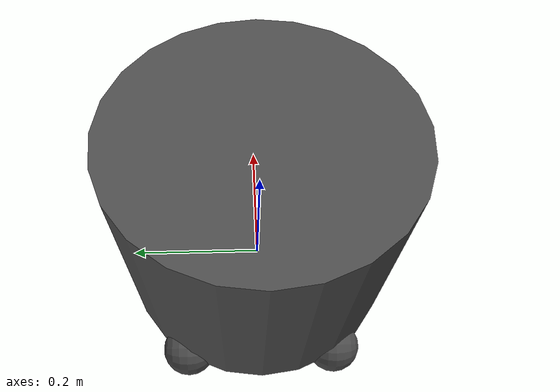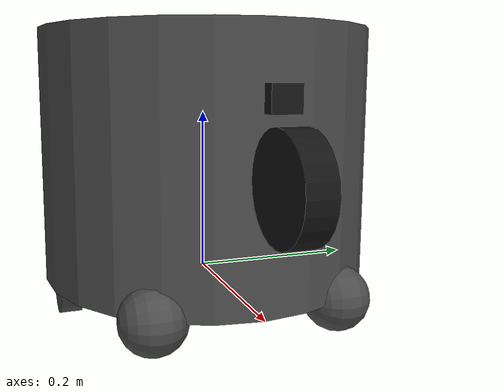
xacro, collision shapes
<?xml version="1.0" ?>
<robot name="uni_base" xmlns:xacro="http://ros.org/wiki/xacro">
  <xacro:include filename="$(find uni_description)/urdf/uni_base.gazebo.xacro"/>

  <!--link name="base_footprint"/-->

  <link name="base_link">
    <visual>
      <origin xyz="0 0 -0.04" rpy="0 0 -1.57"/>
      <geometry>
        <mesh filename="package://uni_description/meshes/B1_base_mesh.stl" scale="0.001 0.001 0.001"/>
      </geometry>
      <material
        name="">
        <color
          rgba="0.3 0.3 0.3 1" />
      </material>
    </visual>
    <collision>
      <origin xyz="0 0 0.15" rpy="0 0 0"/>
      <geometry>
        <cylinder length="0.3" radius="0.2"/>
      </geometry>
    </collision>

    <inertial>
      <origin xyz="0 0 0.14" rpy="0 0 0"/>
      <mass value="36.22"/>
      <inertia ixx="1.760901" ixy="2.081e-3" ixz="1.6376223e-01"
               iyy="2.069692" iyz="3.146e-05"
               izz="1.08381489" />
    </inertial>
  </link>

  <joint name="wheel_left_joint" type="fixed">
    <parent link="base_link"/>
    <child link="wheel_left_link"/>
    <origin xyz="0.0 0.175 0.025" rpy="-1.57 0 0"/>
    <axis xyz="0 0 1"/>
  </joint>

  <link name="wheel_left_link">
    <visual>
      <origin xyz="0 0 -0.025" rpy="0 1.57 0"/>
      <geometry>
        <mesh filename="package://uni_description/meshes/wheel_L.stl"/>
      </geometry>
      <material
        name="">
        <color
          rgba="0.3 0.3 0.3 1" />
      </material>
    </visual>

    <collision>
      <origin xyz="0 0 0" rpy="0 0 0"/>
      <geometry>
        <cylinder length="0.025" radius="0.065"/>
      </geometry>
    </collision>

    <inertial>
      <origin xyz="0 0 0" />
      <mass value="1.8985" />
      <inertia ixx="2.998261e-03" ixy="2.07094e-19" ixz="1.86545e-19"
               iyy="2.998261e-03" iyz="-9.08019e-20"
               izz="5.556445e-03" />
    </inertial>
  </link>

  <link name="wheel_right_link">
    <visual>
      <origin xyz="0 0 0.025" rpy="0 1.57 0"/>
      <geometry>
        <mesh filename="package://uni_description/meshes/wheel_R.stl"/>
      </geometry>
      <material
        name="">
        <color
          rgba="0.3 0.3 0.3 1" />
      </material>
    </visual>

    <collision>
      <origin xyz="0 0 0" rpy="0 0 0"/>
      <geometry>
        <cylinder length="0.025" radius="0.065"/>
      </geometry>
    </collision>

    <inertial>
      <origin xyz="0 0 0" />
      <mass value="1.8985" />
      <inertia ixx="2.998261e-03" ixy="2.07094e-19" ixz="1.86545e-19"
               iyy="2.998261e-03" iyz="-9.08019e-20"
               izz="5.556445e-03" />
    </inertial>
  </link>

  <joint name="wheel_right_joint" type="fixed">
    <parent link="base_link"/>
    <child link="wheel_right_link"/>
    <origin xyz="0.0 -0.175 0.025" rpy="-1.57 0 0"/>
    <axis xyz="0 0 1"/>
  </joint>

  <link name="caster_front_right_link">
    <collision>
      <origin xyz="0 0.001 0" rpy="0 0 0"/>
      <geometry>
        <sphere radius="0.0375"/>
      </geometry>
    </collision>

    <visual>
      <origin xyz="0 0.001 0" rpy="0 0 0"/>
      <geometry>
        <sphere radius="0.0375"/>
      </geometry>
      <material
        name="">
        <color
          rgba="0.3 0.3 0.3 1" />
      </material>
    </visual>

    <inertial>
      <origin xyz="0 0 0" />
      <mass value="0.005" />
      <inertia ixx="0.001" ixy="0.0" ixz="0.0"
               iyy="0.001" iyz="0.0"
               izz="0.001" />
    </inertial>
  </link>

  <joint name="caster_front_right_joint" type="fixed">
    <parent link="base_link"/>
    <child link="caster_front_right_link"/>
    <origin xyz="0.158 -0.105 -0.0005" rpy="-1.57 0 0"/>
  </joint>

  <link name="caster_front_left_link">
    <collision>
      <origin xyz="0 0.001 0" rpy="0 0 0"/>
      <geometry>
        <sphere radius="0.0375"/>
      </geometry>
    </collision>

    <visual>
      <origin xyz="0 0.001 0" rpy="0 0 0"/>
      <geometry>
        <sphere radius="0.0375"/>
      </geometry>
      <material
        name="">
        <color
          rgba="0.3 0.3 0.3 1" />
      </material>
    </visual>

    <inertial>
      <origin xyz="0 0 0" />
      <mass value="0.005" />
      <inertia ixx="0.001" ixy="0.0" ixz="0.0"
               iyy="0.001" iyz="0.0"
               izz="0.001" />
    </inertial>
  </link>

  <joint name="caster_front_left_joint" type="fixed">
    <parent link="base_link"/>
    <child link="caster_front_left_link"/>
    <origin xyz="0.158 0.105 -0.0005" rpy="-1.57 0 0"/>
  </joint>

  <link name="caster_back_right_link">
    <collision>
      <origin xyz="0 0.001 0" rpy="0 0 0"/>
      <geometry>
        <sphere radius="0.0375"/>
      </geometry>
    </collision>

    <visual>
      <origin xyz="0 0.001 0" rpy="0 0 0"/>
      <geometry>
        <sphere radius="0.0375"/>
      </geometry>
      <material
        name="">
        <color
          rgba="0.3 0.3 0.3 1" />
      </material>
    </visual>

    <inertial>
      <origin xyz="0 0 0" />
      <mass value="0.005" />
      <inertia ixx="0.001" ixy="0.0" ixz="0.0"
               iyy="0.001" iyz="0.0"
               izz="0.001" />
    </inertial>
  </link>

  <joint name="caster_back_right_joint" type="fixed">
    <parent link="base_link"/>
    <child link="caster_back_right_link"/>
    <origin xyz="-0.158 -0.105 -0.0005" rpy="-1.57 0 0"/>
  </joint>

  <link name="caster_back_left_link">
    <collision>
      <origin xyz="0 0.001 0" rpy="0 0 0"/>
      <geometry>
        <sphere radius="0.0375"/>
      </geometry>
    </collision>

    <visual>
      <origin xyz="0 0.001 0" rpy="0 0 0"/>
      <geometry>
        <sphere radius="0.0375"/>
      </geometry>
      <material
        name="">
        <color
          rgba="0.3 0.3 0.3 1" />
      </material>
    </visual>

    <inertial>
      <origin xyz="0 0 0" />
      <mass value="0.005" />
      <inertia ixx="0.001" ixy="0.0" ixz="0.0"
               iyy="0.001" iyz="0.0"
               izz="0.001" />
    </inertial>
  </link>

  <joint name="caster_back_left_joint" type="fixed">
    <parent link="base_link"/>
    <child link="caster_back_left_link"/>
    <origin xyz="-0.158 0.105 -0.0005" rpy="-1.57 0 0"/>
  </joint>

  <link name="imu_link"/>
  <joint name="imu_joint" type="fixed">
    <parent link="base_link"/>
    <child link="imu_link"/>
    <origin xyz="0.0 0 0.068" rpy="0 0 0"/>
  </joint>

  <link name="front_laser">
    <visual>
      <origin xyz="0.01 0 -0.04" rpy="0 -1.57 -1.57"/>
      <geometry>
        <mesh filename="package://uni_description/meshes/TiM571.stl" scale="0.001 0.001 0.001"/>
      </geometry>
      <material
        name="">
        <color
          rgba="0.08 0.08 0.08 1" />
      </material>
    </visual>

    <collision>
      <origin xyz="0.015 0 -0.0065" rpy="0 -1.57 -1.57"/>
      <geometry>
        <cylinder length="0.0315" radius="0.055"/>
      </geometry>
    </collision>

    <inertial>
      <mass value="0.001" />
      <origin xyz="0 0 0" />
      <inertia ixx="0.001" ixy="0.0" ixz="0.0"
               iyy="0.001" iyz="0.0"
               izz="0.001" />
    </inertial>
  </link>

  <joint name="scan_joint" type="fixed">
    <origin xyz="0.238 0 0.152" rpy="0 0 0"/>
    <parent link="base_link"/>
    <child link="front_laser"/>
  </joint>

  <link name="front_astra_camera">
    <visual>
      <origin xyz="-0.004 0.071 -0.129" rpy="0 0 1.57"/>
      <geometry>
        <mesh filename="package://uni_description/meshes/gazebo_astra.stl" scale="0.001 0.001 0.001" />
      </geometry>
      <material
        name="dark_grey">
        <color
          rgba="0.09 0.09 0.09 1" />
      </material>
    </visual>

    <collision>
      <origin xyz="0.005 0.011 0.013" rpy="0 0 0"/>
      <geometry>
        <box size="0.015 0.030 0.027"/>
      </geometry>
    </collision>
  </link>

  <joint name="front_astra_joint" type="fixed">
    <origin xyz="0.246 -0.02 0.212" rpy="0 0 0"/>
    <parent link="base_link"/>
    <child link="front_astra_camera"/>
  </joint>

  <joint name="front_astra_rgb_joint" type="fixed">
    <origin xyz="0.003 0.011 0.009" rpy="0 0 0"/>
    <parent link="front_astra_camera"/>
    <child link="front_astra_rgb_frame"/>
  </joint>

  <link name="front_astra_rgb_frame"/>

  <joint name="front_astra_rgb_optical_joint" type="fixed">
    <origin xyz="0 0 0" rpy="-1.57 0 -1.57"/>
    <parent link="front_astra_rgb_frame"/>
    <child link="front_astra_rgb_optical_frame"/>
  </joint>

  <link name="front_astra_rgb_optical_frame"/>

  <joint name="front_astra_depth_joint" type="fixed">
    <origin xyz="0 0.025 0" rpy="0 0 0"/>
    <parent link="front_astra_camera"/>
    <child link="front_astra_depth_frame"/>
  </joint>

  <link name="front_astra_depth_frame"/>

  <!-- Image an CameraInfo message headers shouldga reference the camera_link_optical frame-->

  <joint name="front_astra_depth_optical_joint" type="fixed">
    <origin xyz="0 0 0" rpy="-1.57 0 -1.57"/>
    <parent link="front_astra_depth_frame"/>
    <child link="front_astra_depth_optical_frame"/>
  </joint>

  <link name="front_astra_depth_optical_frame"/>
</robot>
